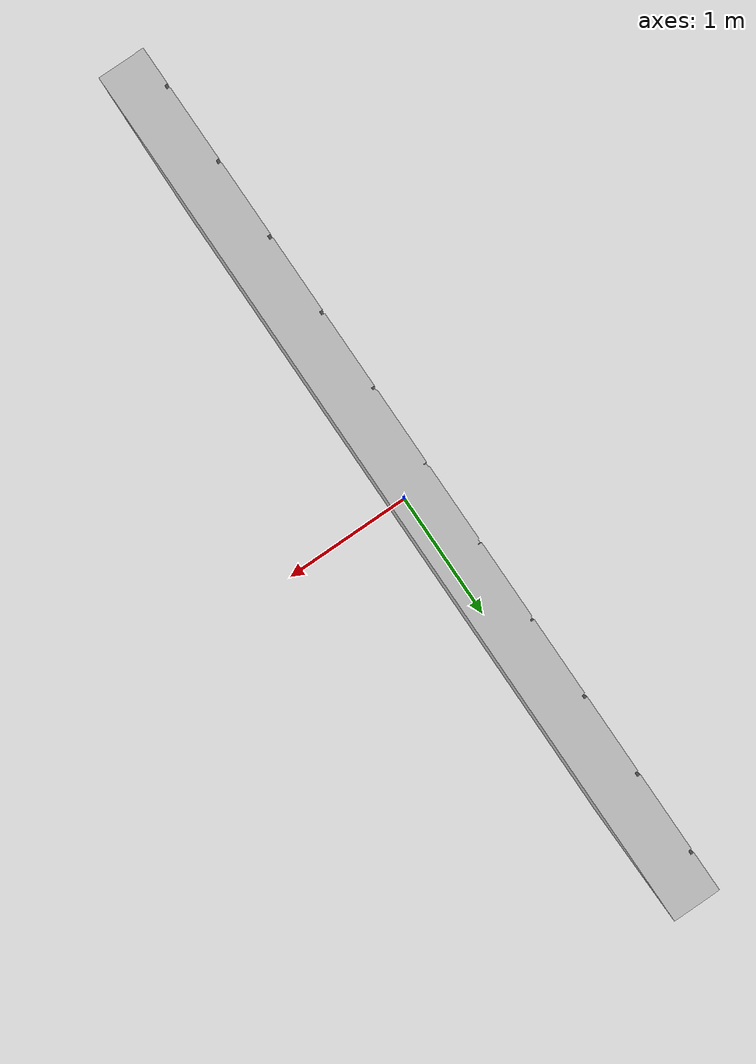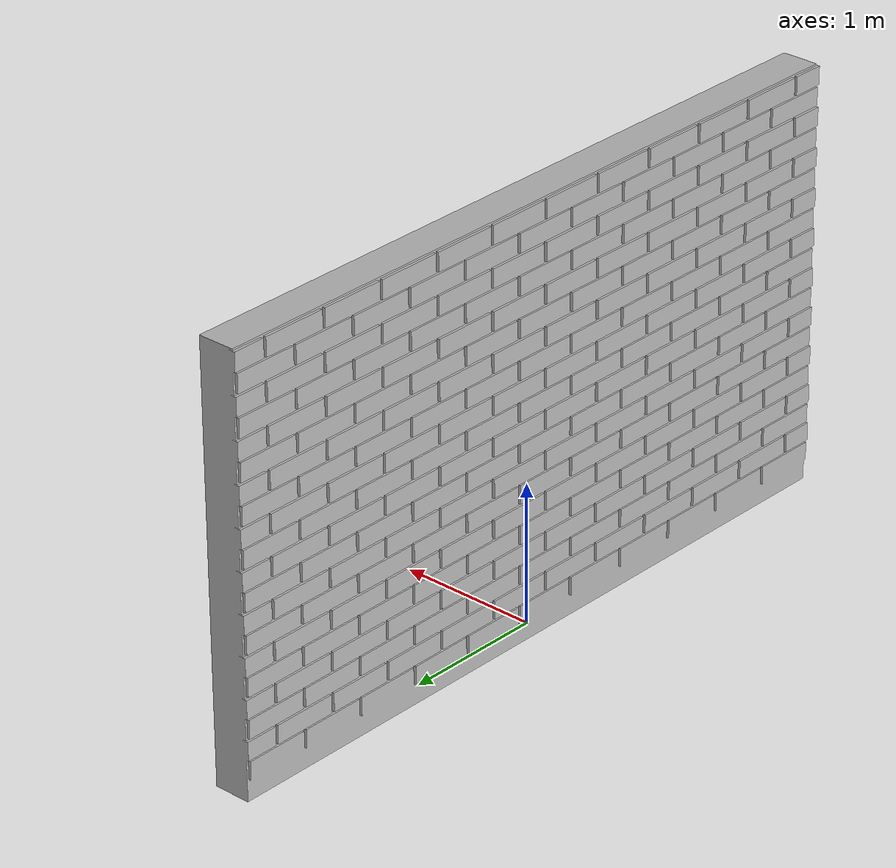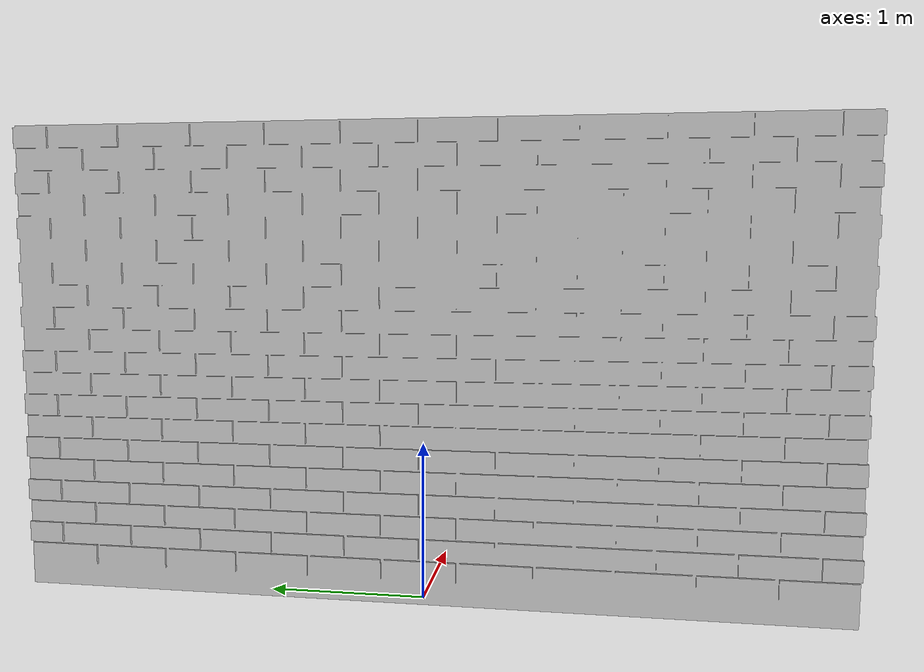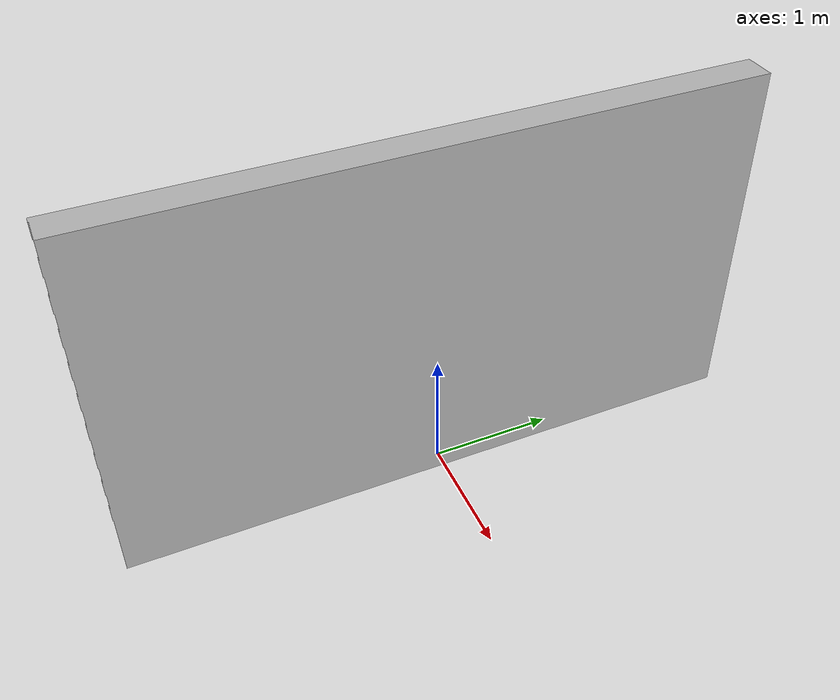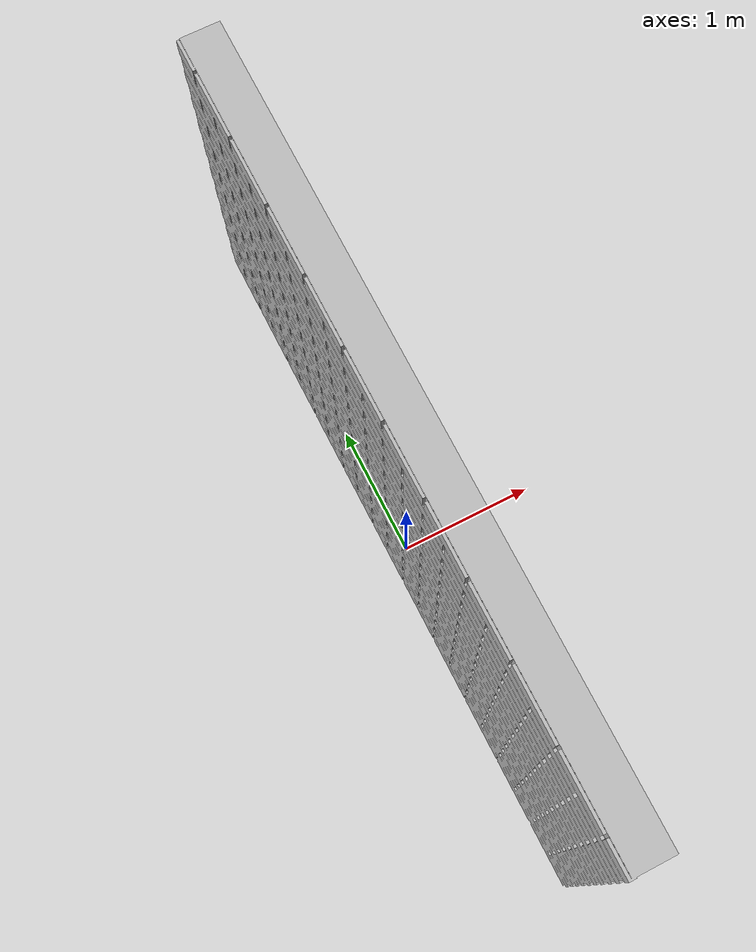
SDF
<sdf version="1.5">
  <model name="Robot">
    <link name="Robot">
      <visual name="visual_Wall">
        <pose>0.0 0.0 0.0 1.57079632679 0.0 3.14159265359</pose>
        <geometry>
          <mesh>
            <uri>wall.obj</uri>
          </mesh>
        </geometry>
      </visual>
      <collision name="collision_Wall">
        <pose>0.0 0.0 1.5 0.0 0.0 0.0</pose>
        <geometry>
          <box>
            <size>0.25 5.0 3.0</size>
          </box>
        </geometry>
      </collision>
    </link>
  </model>
</sdf>
